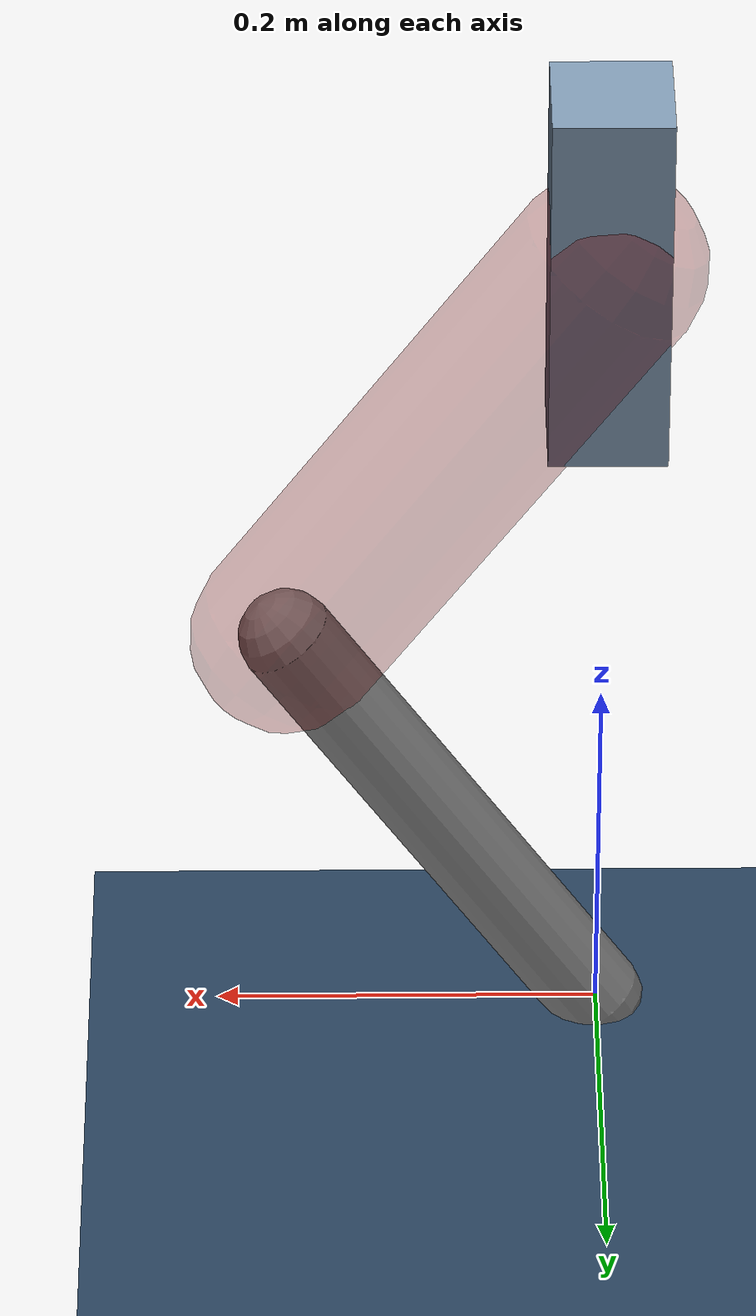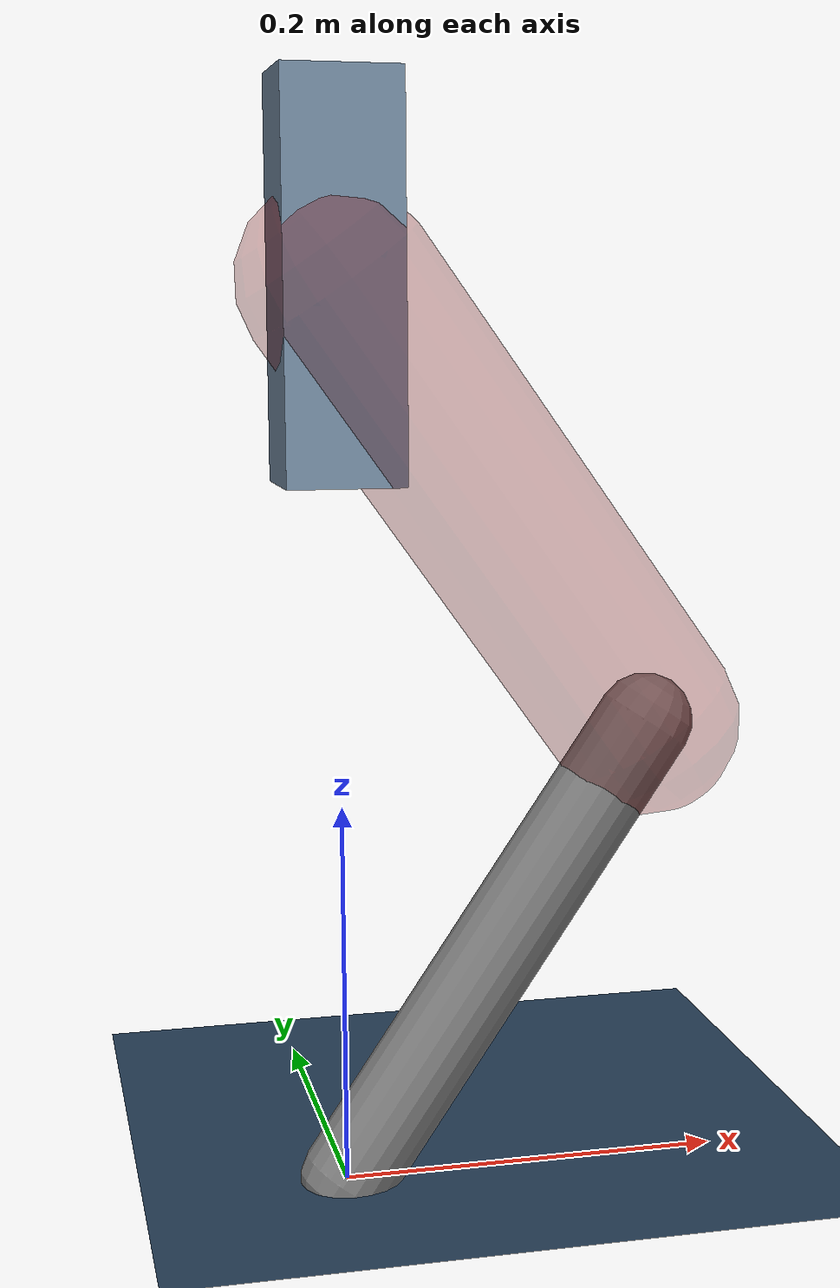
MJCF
<mujoco model="Hopper2D">
	<compiler inertiafromgeom="true" angle="radian" />
	<option timestep="0.001" integrator="implicit" cone="elliptic" solver="Newton" tolerance="1e-10" />

	<default>
		<geom contype="1" conaffinity="1" condim="3" friction="2 0.005 0.0001" solref="0.005 1" />
		<joint limited="true" damping="0.1" />
	</default>

	<asset>
		<texture name="skybox" type="skybox" builtin="gradient" rgb1=".4 .6 .8" rgb2="0 0 0" width="800" height="800" />
		<texture name="grid" type="2d" builtin="checker" rgb1=".1 .2 .3" rgb2=".2 .3 .4" width="300" height="300" mark="edge" markrgb=".2 .3 .4" />
		<material name="ground" texture="grid" texrepeat="1 1" texuniform="true" reflectance="0.1" />
		<material name="leg" rgba="0.5 0.6 0.7 1" />
	</asset>

	<worldbody>

		<geom name="floor" type="plane" size="5 5 0.25" material="ground" />

		<light directional="false" diffuse="0.8 0.8 0.8" specular="0.3 0.3 0.3" pos="0 0 2" dir="0 0 -1" />
		<light mode="targetbodycom" target="base" directional="false" diffuse="0.8 0.8 0.8" specular="0.3 0.3 0.3" pos="0 0 2" dir="0 0 -1" />

		<camera name="fixed" pos="0 -2 1" xyaxes="1 0 0 0 0 1" />
		<camera name="tracking" mode="trackcom" pos="0 -3 1" />

		<body name="root" pos="0 0 0.46518741045404377">
			<joint name="slide_x" type="slide" axis="1 0 0" range="-100 100" />
			<joint name="slide_z" type="slide" axis="0 0 1" range="0 10" />

			<body name="base" pos="0 0 0">
				<geom name="torso" type="box" size="0.03 0.03 0.1" mass="3.384" material="leg" />

				<body name="link1" pos="0 0 0" euler="0 0.9521412216591019 0">
					<joint type="hinge" axis="0 -1 0" pos="0 0 0" name="hinge1" limited="true" range="-3.14 3.14" stiffness="0" damping="0.1" />
					<geom name="thigh" type="capsule" fromto="0 0 0 0.2785735475610194 0 0" size="0.05" rgba="0.5 0 0 0.3" mass="0.9313485784147523" />

					<body name="link2" pos="0.2785735475610194 0 0" euler="0 1.2145373549160299 0">
						<joint type="hinge" axis="0 -1 0" pos="0 0 0" name="hinge2" limited="true" range="-3.14 3.14" stiffness="0" damping="0.1" />
						<geom name="shank" type="capsule" fromto="0 0 0 0.2878558143235132 0 0" size="0.025" mass="0.4735702328911619" />

					</body>
				</body>
			</body>
		</body>
	</worldbody>

	<actuator>
		<motor name="torque1" joint="hinge1" ctrlrange="-155.39489773585728 155.39489773585728" ctrllimited="true" gear="1" />
		<motor name="torque2" joint="hinge2" ctrlrange="-63.86202810546288 63.86202810546288" ctrllimited="true" gear="1" />
	</actuator>
</mujoco>
